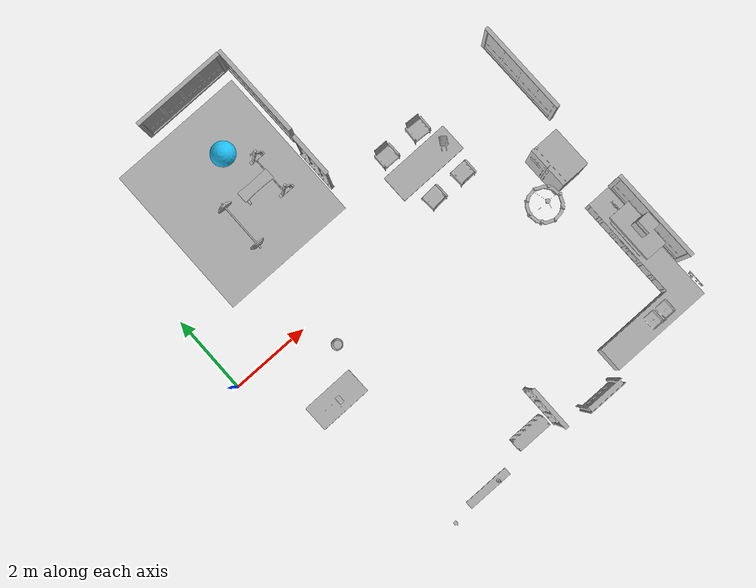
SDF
<sdf version="1.7">
 <world name="default">
  <model name="Ball_01_001">
   <frame name="aws_robomaker_residential_Ball_01::__model__" attached_to="aws_robomaker_residential_Ball_01::link">
    <pose relative_to="__model__">0 0 0 0 -0 0</pose>
   </frame>
   <link name="aws_robomaker_residential_Ball_01::link">
    <inertial>
     <mass>0.12</mass>
     <inertia>
      <ixx>0.030752</ixx>
      <ixy>0</ixy>
      <ixz>0</ixz>
      <iyy>0.030752</iyy>
      <iyz>0</iyz>
      <izz>0.030752</izz>
     </inertia>
    </inertial>
    <collision name="collision">
     <geometry><sphere><radius>0.31</radius></sphere></geometry>
     <surface>
      <friction><ode><mu>0.85</mu><mu2>0.85</mu2></ode></friction>
      <contact><ode><kd>8500</kd><max_vel>5.1</max_vel></ode></contact>
     </surface>
    </collision>
    <visual name="visual">
     <geometry><sphere><radius>0.31</radius></sphere></geometry>
     <material><diffuse>0.12 0.76 0.97 1</diffuse><ambient>0.03 0.21 0.27 1</ambient></material>
     <meta><layer>1</layer></meta>
    </visual>
    <pose relative_to="aws_robomaker_residential_Ball_01::__model__">0 0 0 0 -0 0</pose>
   </link>
   <pose>3.2955 4.22567 0.31 0 -0 0</pose>
  </model>
  <model name="Board_01_001">
   <frame name="aws_robomaker_residential_Board_01::__model__" attached_to="aws_robomaker_residential_Board_01::link">
    <pose relative_to="__model__">0 0 0 0 -0 0</pose>
   </frame>
   <link name="aws_robomaker_residential_Board_01::link">
    <inertial><mass>1</mass></inertial>
    <collision name="collision">
     <geometry>
      <mesh>
       <uri>file://models/aws_robomaker_residential_Board_01/meshes/aws_Board_01_collision.DAE</uri>
       <scale>1 1 1</scale>
      </mesh>
     </geometry>
    </collision>
    <visual name="visual">
     <geometry>
      <mesh><uri>file://models/aws_robomaker_residential_Board_01/meshes/aws_Board_01_visual.DAE</uri></mesh>
     </geometry>
     <meta><layer>2</layer></meta>
    </visual>
    <pose relative_to="aws_robomaker_residential_Board_01::__model__">0 0 0 0 -0 0</pose>
   </link>
   <static>1</static>
   <pose>2.77907 -5.3927 1.53817 0 -0 0</pose>
  </model>
  <model name="ChairA_01_001">
   <frame name="aws_robomaker_residential_ChairA_01::__model__" attached_to="aws_robomaker_residential_ChairA_01::link">
    <pose relative_to="__model__">0 0 0 0 -0 0</pose>
   </frame>
   <link name="aws_robomaker_residential_ChairA_01::link">
    <inertial>
     <mass>7.5</mass>
     <inertia><ixy>0</ixy><ixz>0</ixz><iyz>0</iyz><ixx>0.217</ixx><iyy>0.217</iyy><izz>0.067</izz></inertia>
    </inertial>
    <collision name="collision">
     <geometry>
      <mesh>
       <uri>file://models/aws_robomaker_residential_ChairA_01/meshes/aws_ChairA_01_collision.DAE</uri>
       <scale>1 1 1</scale>
      </mesh>
     </geometry>
    </collision>
    <visual name="visual">
     <geometry>
      <mesh><uri>file://models/aws_robomaker_residential_ChairA_01/meshes/aws_ChairA_01_visual.DAE</uri></mesh>
     </geometry>
     <meta><layer>1</layer></meta>
    </visual>
    <pose relative_to="aws_robomaker_residential_ChairA_01::__model__">0 0 0 0 -0 0</pose>
   </link>
   <pose>7.11516 0.209028 -6e-06 -3.3e-05 0 -1.55607</pose>
  </model>
  <model name="ChairA_01_002">
   <frame name="aws_robomaker_residential_ChairA_01::__model__" attached_to="aws_robomaker_residential_ChairA_01::link">
    <pose relative_to="__model__">0 0 0 0 -0 0</pose>
   </frame>
   <link name="aws_robomaker_residential_ChairA_01::link">
    <inertial>
     <mass>7.5</mass>
     <inertia><ixy>0</ixy><ixz>0</ixz><iyz>0</iyz><ixx>0.217</ixx><iyy>0.217</iyy><izz>0.067</izz></inertia>
    </inertial>
    <collision name="collision">
     <geometry>
      <mesh>
       <uri>file://models/aws_robomaker_residential_ChairA_01/meshes/aws_ChairA_01_collision.DAE</uri>
       <scale>1 1 1</scale>
      </mesh>
     </geometry>
    </collision>
    <visual name="visual">
     <geometry>
      <mesh><uri>file://models/aws_robomaker_residential_ChairA_01/meshes/aws_ChairA_01_visual.DAE</uri></mesh>
     </geometry>
     <meta><layer>1</layer></meta>
    </visual>
    <pose relative_to="aws_robomaker_residential_ChairA_01::__model__">0 0 0 0 -0 0</pose>
   </link>
   <pose>6.25506 0.219468 -0 -0 -0 -1.50414</pose>
  </model>
  <model name="ChairA_01_003">
   <frame name="aws_robomaker_residential_ChairA_01::__model__" attached_to="aws_robomaker_residential_ChairA_01::link">
    <pose relative_to="__model__">0 0 0 0 -0 0</pose>
   </frame>
   <link name="aws_robomaker_residential_ChairA_01::link">
    <inertial>
     <mass>7.5</mass>
     <inertia><ixy>0</ixy><ixz>0</ixz><iyz>0</iyz><ixx>0.217</ixx><iyy>0.217</iyy><izz>0.067</izz></inertia>
    </inertial>
    <collision name="collision">
     <geometry>
      <mesh>
       <uri>file://models/aws_robomaker_residential_ChairA_01/meshes/aws_ChairA_01_collision.DAE</uri>
       <scale>1 1 1</scale>
      </mesh>
     </geometry>
    </collision>
    <visual name="visual">
     <geometry>
      <mesh><uri>file://models/aws_robomaker_residential_ChairA_01/meshes/aws_ChairA_01_visual.DAE</uri></mesh>
     </geometry>
     <meta><layer>1</layer></meta>
    </visual>
    <pose relative_to="aws_robomaker_residential_ChairA_01::__model__">0 0 0 0 -0 0</pose>
   </link>
   <pose>6.06678 1.68075 -0 0 -0 1.56986</pose>
  </model>
  <model name="ChairA_01_004">
   <frame name="aws_robomaker_residential_ChairA_01::__model__" attached_to="aws_robomaker_residential_ChairA_01::link">
    <pose relative_to="__model__">0 0 0 0 -0 0</pose>
   </frame>
   <link name="aws_robomaker_residential_ChairA_01::link">
    <inertial>
     <mass>7.5</mass>
     <inertia><ixy>0</ixy><ixz>0</ixz><iyz>0</iyz><ixx>0.217</ixx><iyy>0.217</iyy><izz>0.067</izz></inertia>
    </inertial>
    <collision name="collision">
     <geometry>
      <mesh>
       <uri>file://models/aws_robomaker_residential_ChairA_01/meshes/aws_ChairA_01_collision.DAE</uri>
       <scale>1 1 1</scale>
      </mesh>
     </geometry>
    </collision>
    <visual name="visual">
     <geometry>
      <mesh><uri>file://models/aws_robomaker_residential_ChairA_01/meshes/aws_ChairA_01_visual.DAE</uri></mesh>
     </geometry>
     <meta><layer>1</layer></meta>
    </visual>
    <pose relative_to="aws_robomaker_residential_ChairA_01::__model__">0 0 0 0 -0 0</pose>
   </link>
   <pose>7.00277 1.67074 -5e-06 -2.7e-05 -0 1.52363</pose>
  </model>
  <model name="Chandelier_01_003">
   <frame name="aws_robomaker_residential_Chandelier_01::__model__" attached_to="aws_robomaker_residential_Chandelier_01::link">
    <pose relative_to="__model__">0 0 0 0 -0 0</pose>
   </frame>
   <link name="aws_robomaker_residential_Chandelier_01::link">
    <inertial><mass>1</mass></inertial>
    <collision name="collision">
     <geometry>
      <mesh>
       <uri>file://models/aws_robomaker_residential_Chandelier_01/meshes/aws_Chandelier_01_collision.DAE</uri>
       <scale>1 1 1</scale>
      </mesh>
     </geometry>
    </collision>
    <visual name="visual">
     <geometry>
      <mesh>
       <uri>file://models/aws_robomaker_residential_Chandelier_01/meshes/aws_Chandelier_01_visual.DAE</uri>
      </mesh>
     </geometry>
     <meta><layer>2</layer></meta>
    </visual>
    <pose relative_to="aws_robomaker_residential_Chandelier_01::__model__">0 0 0 0 -0 0</pose>
   </link>
   <static>1</static>
   <pose>7.82406 -1.59 1.751 0 -0 0</pose>
  </model>
  <model name="Carpet_01_002">
   <frame name="aws_robomaker_residential_Carpet_01::__model__" attached_to="aws_robomaker_residential_Carpet_01::link">
    <pose relative_to="__model__">0 0 0 0 -0 0</pose>
   </frame>
   <link name="aws_robomaker_residential_Carpet_01::link">
    <inertial><mass>8.1</mass></inertial>
    <collision name="collision">
     <geometry>
      <mesh>
       <uri>file://models/aws_robomaker_residential_Carpet_01/meshes/aws_Carpet_01_collision.DAE</uri>
       <scale>1 1 0.95</scale>
      </mesh>
     </geometry>
     <pose>0 0 -0.01 0 -0 0</pose>
    </collision>
    <visual name="visual">
     <geometry>
      <mesh><uri>file://models/aws_robomaker_residential_Carpet_01/meshes/aws_Carpet_01_visual.DAE</uri></mesh>
     </geometry>
     <meta><layer>1</layer></meta>
    </visual>
    <pose relative_to="aws_robomaker_residential_Carpet_01::__model__">0 0 0 0 -0 0</pose>
   </link>
   <static>1</static>
   <pose>2.85405 3.45 0.000585 0 -0 0</pose>
  </model>
  <model name="CoffeeTable_01_001">
   <frame name="aws_robomaker_residential_CoffeeTable_01::__model__" attached_to="aws_robomaker_residential_CoffeeTable_01::link">
    <pose relative_to="__model__">0 0 0 0 -0 0</pose>
   </frame>
   <link name="aws_robomaker_residential_CoffeeTable_01::link">
    <inertial>
     <mass>21.7</mass>
     <inertia><ixx>0.81375</ixx><ixy>0</ixy><ixz>0</ixz><iyy>2.76675</iyy><iyz>0</iyz><izz>3.254</izz></inertia>
    </inertial>
    <collision name="collision">
     <geometry>
      <mesh>
       <uri>file://models/aws_robomaker_residential_CoffeeTable_01/meshes/aws_CoffeeTable_01_collision.DAE</uri>
       <scale>1 1 1</scale>
      </mesh>
     </geometry>
     <surface><contact><ode><max_vel>0.01</max_vel></ode></contact></surface>
    </collision>
    <visual name="visual">
     <geometry>
      <mesh>
       <uri>file://models/aws_robomaker_residential_CoffeeTable_01/meshes/aws_CoffeeTable_01_visual.DAE</uri>
      </mesh>
     </geometry>
     <meta><layer>1</layer></meta>
    </visual>
    <pose relative_to="aws_robomaker_residential_CoffeeTable_01::__model__">0 0 0 0 -0 0</pose>
   </link>
   <static>1</static>
   <pose>1.5123 -1.73344 0.041983 0 -0 0.01</pose>
  </model>
  <model name="CookingBench_01_001">
   <frame name="aws_robomaker_residential_CookingBench_01::__model__" attached_to="aws_robomaker_residential_CookingBench_01::link">
    <pose relative_to="__model__">0 0 0 0 -0 0</pose>
   </frame>
   <link name="aws_robomaker_residential_CookingBench_01::link">
    <inertial><mass>1</mass></inertial>
    <collision name="collision">
     <geometry>
      <mesh>
       <uri>file://models/aws_robomaker_residential_CookingBench_01/meshes/aws_CookingBench_01_collision.DAE</uri>
       <scale>1 1 1</scale>
      </mesh>
     </geometry>
    </collision>
    <visual name="visual">
     <geometry>
      <mesh>
       <uri>file://models/aws_robomaker_residential_CookingBench_01/meshes/aws_CookingBench_01_visual.DAE</uri>
      </mesh>
     </geometry>
     <meta><layer>1</layer></meta>
    </visual>
    <pose relative_to="aws_robomaker_residential_CookingBench_01::__model__">0 0 0 0 -0 0</pose>
   </link>
   <pose>9.03838 -3.35114 0.90361 0 -0 3.13713</pose>
   <static>1</static>
  </model>
  <model name="KitchenTable_01_001">
   <frame name="aws_robomaker_residential_KitchenTable_01::__model__" attached_to="aws_robomaker_residential_KitchenTable_01::link">
    <pose relative_to="__model__">0 0 0 0 -0 0</pose>
   </frame>
   <link name="aws_robomaker_residential_KitchenTable_01::link">
    <inertial>
     <mass>12.3</mass>
     <inertia><ixx>1</ixx><ixy>0</ixy><ixz>0</ixz><iyy>1</iyy><iyz>0</iyz><izz>1</izz></inertia>
    </inertial>
    <collision name="collision">
     <geometry>
      <mesh>
       <uri>file://models/aws_robomaker_residential_KitchenTable_01/meshes/aws_KitchenTable_01_collision.DAE</uri>
       <scale>1 1 1</scale>
      </mesh>
     </geometry>
    </collision>
    <visual name="visual">
     <geometry>
      <mesh>
       <uri>file://models/aws_robomaker_residential_KitchenTable_01/meshes/aws_KitchenTable_01_visual.DAE</uri>
      </mesh>
     </geometry>
     <meta><layer>1</layer></meta>
    </visual>
    <pose relative_to="aws_robomaker_residential_KitchenTable_01::__model__">0 0 0 0 -0 0</pose>
   </link>
   <pose>6.55036 0.95103 0 0 0 -1.56369</pose>
  </model>
  <model name="Door_01_001">
   <frame name="aws_robomaker_residential_Door_01::__model__" attached_to="aws_robomaker_residential_Door_01::link">
    <pose relative_to="__model__">0 0 0 0 -0 0</pose>
   </frame>
   <link name="aws_robomaker_residential_Door_01::link">
    <inertial><mass>1</mass></inertial>
    <collision name="collision">
     <geometry>
      <mesh>
       <uri>file://models/aws_robomaker_residential_Door_01/meshes/aws_Door_01_collision.DAE</uri>
       <scale>1 1 1</scale>
      </mesh>
     </geometry>
    </collision>
    <visual name="visual">
     <geometry>
      <mesh><uri>file://models/aws_robomaker_residential_Door_01/meshes/aws_Door_01_visual.DAE</uri></mesh>
     </geometry>
     <meta><layer>2</layer></meta>
    </visual>
    <pose relative_to="aws_robomaker_residential_Door_01::__model__">0 0 0 0 -0 0</pose>
   </link>
   <static>1</static>
   <pose>6.00145 -5.549 0 0 -0 0</pose>
  </model>
  <model name="Dumbbell_01_001">
   <frame name="aws_robomaker_residential_Dumbbell_01::__model__" attached_to="aws_robomaker_residential_Dumbbell_01::link">
    <pose relative_to="__model__">0 0 0 0 -0 0</pose>
   </frame>
   <link name="aws_robomaker_residential_Dumbbell_01::link">
    <inertial>
     <mass>80</mass>
     <inertia><ixx>14.601</ixx><ixy>0</ixy><ixz>0</ixz><iyy>0</iyy><iyz>0</iyz><izz>14.601</izz></inertia>
    </inertial>
    <collision name="collision">
     <geometry>
      <mesh>
       <uri>file://models/aws_robomaker_residential_Dumbbell_01/meshes/aws_Dumbbell_01_collision.DAE</uri>
       <scale>1 1 1</scale>
      </mesh>
     </geometry>
    </collision>
    <visual name="visual">
     <geometry>
      <mesh><uri>file://models/aws_robomaker_residential_Dumbbell_01/meshes/aws_Dumbbell_01_visual.DAE</uri></mesh>
     </geometry>
     <meta><layer>1</layer></meta>
    </visual>
    <pose relative_to="aws_robomaker_residential_Dumbbell_01::__model__">0 0 0 0 -0 0</pose>
   </link>
   <static>1</static>
   <pose>2.51285 2.71779 0.002183 0 -0 0</pose>
  </model>
  <model name="Tablet_01_001">
   <frame name="aws_robomaker_residential_Tablet_01::__model__" attached_to="aws_robomaker_residential_Tablet_01::link">
    <pose relative_to="__model__">0 0 0 0 -0 0</pose>
   </frame>
   <link name="aws_robomaker_residential_Tablet_01::link">
    <inertial>
     <mass>0.5</mass>
     <inertia><ixx>0.035652</ixx><ixy>0</ixy><ixz>0</ixz><iyy>0.01</iyy><iyz>0</iyz><izz>0.041207</izz></inertia>
    </inertial>
    <collision name="collision">
     <geometry>
      <mesh>
       <uri>file://models/aws_robomaker_residential_Tablet_01/meshes/aws_Tablet_01_collision.DAE</uri>
       <scale>1 1 1</scale>
      </mesh>
     </geometry>
    </collision>
    <visual name="visual">
     <geometry>
      <mesh><uri>file://models/aws_robomaker_residential_Tablet_01/meshes/aws_Tablet_01_visual.DAE</uri></mesh>
     </geometry>
     <meta><layer>2</layer></meta>
    </visual>
    <pose relative_to="aws_robomaker_residential_Tablet_01::__model__">0 0 0 0 -0 0</pose>
   </link>
   <static>1</static>
   <pose>1.57283 -1.77586 0.40179 -0.020625 -8e-05 -0.006317</pose>
  </model>
  <model name="FitnessEquipment_01_001">
   <frame name="aws_robomaker_residential_FitnessEquipment_01::__model__" attached_to="aws_robomaker_residential_FitnessEquipment_01::link">
    <pose relative_to="__model__">0 0 0 0 -0 0</pose>
   </frame>
   <link name="aws_robomaker_residential_FitnessEquipment_01::link">
    <inertial><mass>80</mass></inertial>
    <collision name="collision">
     <geometry>
      <mesh>
       <uri>file://models/aws_robomaker_residential_FitnessEquipment_01/meshes/aws_FitnessEquipment_01_collision.DAE</uri>
       <scale>1 1 1</scale>
      </mesh>
     </geometry>
    </collision>
    <visual name="visual">
     <geometry>
      <mesh>
       <uri>file://models/aws_robomaker_residential_FitnessEquipment_01/meshes/aws_FitnessEquipment_01_visual.DAE</uri>
      </mesh>
     </geometry>
     <meta><layer>1</layer></meta>
    </visual>
    <pose relative_to="aws_robomaker_residential_FitnessEquipment_01::__model__">0 0 0 0 -0 0</pose>
   </link>
   <static>1</static>
   <pose>3.48472 3.1691 0.003168 0 -0 0</pose>
  </model>
  <model name="Handle_01_001">
   <frame name="aws_robomaker_residential_Handle_01::__model__" attached_to="aws_robomaker_residential_Handle_01::link">
    <pose relative_to="__model__">0 0 0 0 -0 0</pose>
   </frame>
   <link name="aws_robomaker_residential_Handle_01::link">
    <inertial><mass>1</mass></inertial>
    <collision name="collision">
     <geometry>
      <mesh>
       <uri>file://models/aws_robomaker_residential_Handle_01/meshes/aws_Handle_01_collision.DAE</uri>
       <scale>1 1 1</scale>
      </mesh>
     </geometry>
    </collision>
    <visual name="visual">
     <geometry>
      <mesh><uri>file://models/aws_robomaker_residential_Handle_01/meshes/aws_Handle_01_visual.DAE</uri></mesh>
     </geometry>
     <meta><layer>2</layer></meta>
    </visual>
    <pose relative_to="aws_robomaker_residential_Handle_01::__model__">0 0 0 0 -0 0</pose>
   </link>
   <static>1</static>
   <pose>5.724 -5.523 0.9938 0 0 -3.1415</pose>
  </model>
  <model name="FoldingDoor_02_001">
   <frame name="aws_robomaker_residential_FoldingDoor_02::__model__" attached_to="aws_robomaker_residential_FoldingDoor_02::link">
    <pose relative_to="__model__">0 0 0 0 -0 0</pose>
   </frame>
   <link name="aws_robomaker_residential_FoldingDoor_02::link">
    <inertial><mass>1</mass></inertial>
    <collision name="collision">
     <geometry>
      <mesh>
       <uri>file://models/aws_robomaker_residential_FoldingDoor_02/meshes/aws_FoldingDoor_02_collision.DAE</uri>
       <scale>1 1 1</scale>
      </mesh>
     </geometry>
    </collision>
    <visual name="visual">
     <geometry>
      <mesh>
       <uri>file://models/aws_robomaker_residential_FoldingDoor_02/meshes/aws_FoldingDoor_02_visual.DAE</uri>
      </mesh>
     </geometry>
     <meta><layer>2</layer></meta>
    </visual>
    <pose relative_to="aws_robomaker_residential_FoldingDoor_02::__model__">0 0 0 0 -0 0</pose>
   </link>
   <static>1</static>
   <pose>4.67423 2.46451 0 0 -0 3.14159</pose>
  </model>
  <model name="FoldingDoor_02_002">
   <frame name="aws_robomaker_residential_FoldingDoor_02::__model__" attached_to="aws_robomaker_residential_FoldingDoor_02::link">
    <pose relative_to="__model__">0 0 0 0 -0 0</pose>
   </frame>
   <link name="aws_robomaker_residential_FoldingDoor_02::link">
    <inertial><mass>1</mass></inertial>
    <collision name="collision">
     <geometry>
      <mesh>
       <uri>file://models/aws_robomaker_residential_FoldingDoor_02/meshes/aws_FoldingDoor_02_collision.DAE</uri>
       <scale>1 1 1</scale>
      </mesh>
     </geometry>
    </collision>
    <visual name="visual">
     <geometry>
      <mesh>
       <uri>file://models/aws_robomaker_residential_FoldingDoor_02/meshes/aws_FoldingDoor_02_visual.DAE</uri>
      </mesh>
     </geometry>
     <meta><layer>2</layer></meta>
    </visual>
    <pose relative_to="aws_robomaker_residential_FoldingDoor_02::__model__">0 0 0 0 -0 0</pose>
   </link>
   <static>1</static>
   <pose>4.8912 -4.84968 0 0 -0 0</pose>
  </model>
  <model name="KitchenCabinet_01_001">
   <frame name="aws_robomaker_residential_KitchenCabinet_01::__model__" attached_to="aws_robomaker_residential_KitchenCabinet_01::link">
    <pose relative_to="__model__">0 0 0 0 -0 0</pose>
   </frame>
   <link name="aws_robomaker_residential_KitchenCabinet_01::link">
    <inertial><mass>1</mass></inertial>
    <collision name="collision">
     <geometry>
      <mesh>
       <uri>file://models/aws_robomaker_residential_KitchenCabinet_01/meshes/aws_KitchenCabinet_01_collision.DAE</uri>
       <scale>1 1 1</scale>
      </mesh>
     </geometry>
    </collision>
    <visual name="visual">
     <geometry>
      <mesh>
       <uri>file://models/aws_robomaker_residential_KitchenCabinet_01/meshes/aws_KitchenCabinet_01_visual.DAE</uri>
      </mesh>
     </geometry>
     <meta><layer>1</layer></meta>
    </visual>
    <pose relative_to="aws_robomaker_residential_KitchenCabinet_01::__model__">0 0 0 0 -0 0</pose>
   </link>
   <static>1</static>
   <pose>8.00201 -3.83651 0.012068 0 0 -3.14</pose>
  </model>
  <model name="KitchenUtensils_01_001">
   <frame name="aws_robomaker_residential_KitchenUtensils_01::__model__" attached_to="aws_robomaker_residential_KitchenUtensils_01::link">
    <pose relative_to="__model__">0 0 0 0 -0 0</pose>
   </frame>
   <link name="aws_robomaker_residential_KitchenUtensils_01::link">
    <inertial><mass>1</mass></inertial>
    <collision name="collision">
     <geometry>
      <mesh>
       <uri>file://models/aws_robomaker_residential_KitchenUtensils_01/meshes/aws_KitchenUtensils_01_collision.DAE</uri>
       <scale>1 1 1</scale>
      </mesh>
     </geometry>
    </collision>
    <visual name="visual">
     <geometry>
      <mesh>
       <uri>file://models/aws_robomaker_residential_KitchenUtensils_01/meshes/aws_KitchenUtensils_01_visual.DAE</uri>
      </mesh>
     </geometry>
     <meta><layer>1</layer></meta>
    </visual>
    <pose relative_to="aws_robomaker_residential_KitchenUtensils_01::__model__">0 0 0 0 -0 0</pose>
   </link>
   <static>1</static>
   <pose>9.28548 -5.02126 1.1418 0 -0 0</pose>
  </model>
  <model name="LightC_01_001">
   <frame name="aws_robomaker_residential_LightC_01::__model__" attached_to="aws_robomaker_residential_LightC_01::link">
    <pose relative_to="__model__">0 0 0 0 -0 0</pose>
   </frame>
   <link name="aws_robomaker_residential_LightC_01::link">
    <inertial><mass>1</mass></inertial>
    <collision name="collision">
     <geometry>
      <mesh>
       <uri>file://models/aws_robomaker_residential_LightC_01/meshes/aws_LightC_01_collision.DAE</uri>
       <scale>1 1 1</scale>
      </mesh>
     </geometry>
    </collision>
    <visual name="visual">
     <geometry>
      <mesh><uri>file://models/aws_robomaker_residential_LightC_01/meshes/aws_LightC_01_visual.DAE</uri></mesh>
     </geometry>
     <meta><layer>2</layer></meta>
    </visual>
    <pose relative_to="aws_robomaker_residential_LightC_01::__model__">0 0 0 0 -0 0</pose>
   </link>
   <static>1</static>
   <pose>1.76957 -5.44437 2 0 -0 0</pose>
  </model>
  <model name="Rangehood_01_001">
   <frame name="aws_robomaker_residential_Rangehood_01::__model__" attached_to="aws_robomaker_residential_Rangehood_01::link">
    <pose relative_to="__model__">0 0 0 0 -0 0</pose>
   </frame>
   <link name="aws_robomaker_residential_Rangehood_01::link">
    <inertial><mass>1</mass></inertial>
    <collision name="collision">
     <geometry>
      <mesh>
       <uri>file://models/aws_robomaker_residential_Rangehood_01/meshes/aws_Rangehood_01_collision.DAE</uri>
       <scale>1 1 1</scale>
      </mesh>
     </geometry>
    </collision>
    <visual name="visual">
     <geometry>
      <mesh>
       <uri>file://models/aws_robomaker_residential_Rangehood_01/meshes/aws_Rangehood_01_visual.DAE</uri>
      </mesh>
     </geometry>
     <meta><layer>2</layer></meta>
    </visual>
    <pose relative_to="aws_robomaker_residential_Rangehood_01::__model__">0 0 0 0 -0 0</pose>
   </link>
   <static>1</static>
   <pose>9.01979 -3.36994 1.50761 0 -0 0</pose>
  </model>
  <model name="Refrigerator_01_001">
   <frame name="aws_robomaker_residential_Refrigerator_01::__model__" attached_to="aws_robomaker_residential_Refrigerator_01::link">
    <pose relative_to="__model__">0 0 0 0 -0 0</pose>
   </frame>
   <link name="aws_robomaker_residential_Refrigerator_01::link">
    <inertial><mass>1</mass></inertial>
    <collision name="collision">
     <geometry>
      <mesh>
       <uri>file://models/aws_robomaker_residential_Refrigerator_01/meshes/aws_Refrigerator_01_collision.DAE</uri>
       <scale>1 1 1</scale>
      </mesh>
     </geometry>
    </collision>
    <visual name="visual">
     <geometry>
      <mesh>
       <uri>file://models/aws_robomaker_residential_Refrigerator_01/meshes/aws_Refrigerator_01_visual.DAE</uri>
      </mesh>
     </geometry>
     <meta><layer>1</layer></meta>
    </visual>
    <pose relative_to="aws_robomaker_residential_Refrigerator_01::__model__">0 0 0 0 -0 0</pose>
   </link>
   <static>1</static>
   <pose>8.70273 -1.03203 0 0 0 -1.5635</pose>
  </model>
  <model name="SeasoningBox_01_001">
   <frame name="aws_robomaker_residential_SeasoningBox_01::__model__" attached_to="aws_robomaker_residential_SeasoningBox_01::link">
    <pose relative_to="__model__">0 0 0 0 -0 0</pose>
   </frame>
   <link name="aws_robomaker_residential_SeasoningBox_01::link">
    <inertial>
     <mass>1</mass>
     <inertia><ixx>1</ixx><ixy>0</ixy><ixz>0</ixz><iyy>1</iyy><iyz>0</iyz><izz>1</izz></inertia>
    </inertial>
    <collision name="collision">
     <geometry>
      <mesh>
       <uri>file://models/aws_robomaker_residential_SeasoningBox_01/meshes/aws_SeasoningBox_01_collision.DAE</uri>
       <scale>1 1 1</scale>
      </mesh>
     </geometry>
    </collision>
    <visual name="visual">
     <geometry>
      <mesh>
       <uri>file://models/aws_robomaker_residential_SeasoningBox_01/meshes/aws_SeasoningBox_01_visual.DAE</uri>
      </mesh>
     </geometry>
     <meta><layer>1</layer></meta>
    </visual>
    <pose relative_to="aws_robomaker_residential_SeasoningBox_01::__model__">0 0 0 0 -0 0</pose>
   </link>
   <pose>9.10797 -2.65173 0.909757 -1e-06 -1e-06 0.00129</pose>
  </model>
  <model name="ShoeRack_01_001">
   <frame name="aws_robomaker_residential_ShoeRack_01::__model__" attached_to="aws_robomaker_residential_ShoeRack_01::link">
    <pose relative_to="__model__">0 0 0 0 -0 0</pose>
   </frame>
   <link name="aws_robomaker_residential_ShoeRack_01::link">
    <inertial>
     <mass>6</mass>
     <inertia>
      <ixx>0.02</ixx>
      <ixy>0</ixy>
      <ixz>0</ixz>
      <iyy>0.04</iyy>
      <iyz>0</iyz>
      <ixx>0.02</ixx>
      <izz>1</izz>
     </inertia>
    </inertial>
    <collision name="collision">
     <geometry>
      <mesh>
       <uri>file://models/aws_robomaker_residential_ShoeRack_01/meshes/aws_ShoeRack_01_collision.DAE</uri>
       <scale>1 1 1</scale>
      </mesh>
     </geometry>
     <surface>
      <friction><ode><mu>0.2</mu><mu2>0.2</mu2></ode></friction>
      <contact><ode><kd>2500</kd></ode></contact>
     </surface>
    </collision>
    <visual name="visual">
     <geometry>
      <mesh><uri>file://models/aws_robomaker_residential_ShoeRack_01/meshes/aws_ShoeRack_01_visual.DAE</uri></mesh>
     </geometry>
     <meta><layer>1</layer></meta>
    </visual>
    <pose relative_to="aws_robomaker_residential_ShoeRack_01::__model__">0 0 0 0 -0 0</pose>
   </link>
   <pose>4.29796 -5.17357 0.004464 0 -0 1.5e-05</pose>
  </model>
  <model name="Tableware_01_001">
   <frame name="aws_robomaker_residential_Tableware_01::__model__" attached_to="aws_robomaker_residential_Tableware_01::link">
    <pose relative_to="__model__">0 0 0 0 -0 0</pose>
   </frame>
   <link name="aws_robomaker_residential_Tableware_01::link">
    <inertial>
     <mass>1</mass>
     <inertia><ixx>1</ixx><ixy>0</ixy><ixz>0</ixz><iyy>1</iyy><iyz>0</iyz><izz>1</izz></inertia>
    </inertial>
    <collision name="collision">
     <geometry>
      <mesh>
       <uri>file://models/aws_robomaker_residential_Tableware_01/meshes/aws_Tableware_01_collision.DAE</uri>
       <scale>1 1 1</scale>
      </mesh>
     </geometry>
    </collision>
    <visual name="visual">
     <geometry>
      <mesh>
       <uri>file://models/aws_robomaker_residential_Tableware_01/meshes/aws_Tableware_01_visual.DAE</uri>
      </mesh>
     </geometry>
     <meta><layer>1</layer></meta>
    </visual>
    <pose relative_to="aws_robomaker_residential_Tableware_01::__model__">0 0 0 0 -0 0</pose>
   </link>
   <pose>7.18728 0.98591 0.819021 0.000147 -2e-06 1.06354</pose>
  </model>
  <model name="Trash_01_001">
   <frame name="aws_robomaker_residential_Trash_01::__model__" attached_to="aws_robomaker_residential_Trash_01::link">
    <pose relative_to="__model__">0 0 0 0 -0 0</pose>
   </frame>
   <link name="aws_robomaker_residential_Trash_01::link">
    <inertial>
     <mass>0.1</mass>
     <inertia><ixy>0</ixy><ixz>0</ixz><iyz>0</iyz><ixx>0.05288</ixx><iyy>0.05288</iyy><izz>0.09132</izz></inertia>
    </inertial>
    <collision name="collision">
     <geometry>
      <mesh>
       <uri>file://models/aws_robomaker_residential_Trash_01/meshes/aws_Trash_01_collision.DAE</uri>
       <scale>1 1 1</scale>
      </mesh>
     </geometry>
    </collision>
    <visual name="visual">
     <geometry>
      <mesh><uri>file://models/aws_robomaker_residential_Trash_01/meshes/aws_Trash_01_visual.DAE</uri></mesh>
     </geometry>
     <meta><layer>1</layer></meta>
    </visual>
    <pose relative_to="aws_robomaker_residential_Trash_01::__model__">0 0 0 0 -0 0</pose>
   </link>
   <pose>2.36015 -0.796238 0.000904 -1e-06 -2e-06 0</pose>
  </model>
  <model name="Vase_01_001">
   <frame name="aws_robomaker_residential_Vase_01::__model__" attached_to="aws_robomaker_residential_Vase_01::link">
    <pose relative_to="__model__">0 0 0 0 -0 0</pose>
   </frame>
   <link name="aws_robomaker_residential_Vase_01::link">
    <inertial>
     <mass>1</mass>
     <inertia><ixx>1</ixx><ixy>0</ixy><ixz>0</ixz><iyy>1</iyy><iyz>0</iyz><izz>1</izz></inertia>
    </inertial>
    <collision name="collision">
     <geometry>
      <mesh>
       <uri>file://models/aws_robomaker_residential_Vase_01/meshes/aws_Vase_01_collision.DAE</uri>
       <scale>1 1 1</scale>
      </mesh>
     </geometry>
    </collision>
    <visual name="visual">
     <geometry>
      <mesh><uri>file://models/aws_robomaker_residential_Vase_01/meshes/aws_Vase_01_visual.DAE</uri></mesh>
     </geometry>
     <meta><layer>1</layer></meta>
    </visual>
    <pose relative_to="aws_robomaker_residential_Vase_01::__model__">0 0 0 0 -0 0</pose>
   </link>
   <pose>3.05566 -5.41308 1.57491 9e-06 -2e-06 0.00084</pose>
  </model>
  <model name="RoomWindow_01_003">
   <frame name="aws_robomaker_residential_RoomWindow_01::__model__" attached_to="aws_robomaker_residential_RoomWindow_01::link">
    <pose relative_to="__model__">0 0 0 0 -0 0</pose>
   </frame>
   <link name="aws_robomaker_residential_RoomWindow_01::link">
    <inertial><mass>1</mass></inertial>
    <collision name="collision">
     <geometry>
      <mesh>
       <uri>file://models/aws_robomaker_residential_RoomWindow_01/meshes/aws_RoomWindow_01_collision.DAE</uri>
       <scale>1 1 1</scale>
      </mesh>
     </geometry>
    </collision>
    <visual name="visual">
     <geometry>
      <mesh>
       <uri>file://models/aws_robomaker_residential_RoomWindow_01/meshes/aws_RoomWindow_01_visual.DAE</uri>
      </mesh>
     </geometry>
     <meta><layer>2</layer></meta>
    </visual>
    <pose relative_to="aws_robomaker_residential_RoomWindow_01::__model__">0 0 0 0 -0 0</pose>
   </link>
   <static>1</static>
   <pose>9.42262 -3.37398 0.502739 0 0 -3.1361</pose>
  </model>
  <model name="RoomWindow_01_004">
   <frame name="aws_robomaker_residential_RoomWindow_01::__model__" attached_to="aws_robomaker_residential_RoomWindow_01::link">
    <pose relative_to="__model__">0 0 0 0 -0 0</pose>
   </frame>
   <link name="aws_robomaker_residential_RoomWindow_01::link">
    <inertial><mass>1</mass></inertial>
    <collision name="collision">
     <geometry>
      <mesh>
       <uri>file://models/aws_robomaker_residential_RoomWindow_01/meshes/aws_RoomWindow_01_collision.DAE</uri>
       <scale>1 1 1</scale>
      </mesh>
     </geometry>
    </collision>
    <visual name="visual">
     <geometry>
      <mesh>
       <uri>file://models/aws_robomaker_residential_RoomWindow_01/meshes/aws_RoomWindow_01_visual.DAE</uri>
      </mesh>
     </geometry>
     <meta><layer>2</layer></meta>
    </visual>
    <pose relative_to="aws_robomaker_residential_RoomWindow_01::__model__">0 0 0 0 -0 0</pose>
   </link>
   <static>1</static>
   <pose>9.42256 0.96852 0.496581 0 0 -3.1361</pose>
  </model>
  <model name="RoomWindow_01_005">
   <frame name="aws_robomaker_residential_RoomWindow_01::__model__" attached_to="aws_robomaker_residential_RoomWindow_01::link">
    <pose relative_to="__model__">0 0 0 0 -0 0</pose>
   </frame>
   <link name="aws_robomaker_residential_RoomWindow_01::link">
    <inertial><mass>1</mass></inertial>
    <collision name="collision">
     <geometry>
      <mesh>
       <uri>file://models/aws_robomaker_residential_RoomWindow_01/meshes/aws_RoomWindow_01_collision.DAE</uri>
       <scale>1 1 1</scale>
      </mesh>
     </geometry>
    </collision>
    <visual name="visual">
     <geometry>
      <mesh>
       <uri>file://models/aws_robomaker_residential_RoomWindow_01/meshes/aws_RoomWindow_01_visual.DAE</uri>
      </mesh>
     </geometry>
     <meta><layer>2</layer></meta>
    </visual>
    <pose relative_to="aws_robomaker_residential_RoomWindow_01::__model__">0 0 0 0 -0 0</pose>
   </link>
   <static>1</static>
   <pose>4.72232 4.47028 0.502739 0 0 -3.1361</pose>
  </model>
  <model name="RoomWindow_01_006">
   <frame name="aws_robomaker_residential_RoomWindow_01::__model__" attached_to="aws_robomaker_residential_RoomWindow_01::link">
    <pose relative_to="__model__">0 0 0 0 -0 0</pose>
   </frame>
   <link name="aws_robomaker_residential_RoomWindow_01::link">
    <inertial><mass>1</mass></inertial>
    <collision name="collision">
     <geometry>
      <mesh>
       <uri>file://models/aws_robomaker_residential_RoomWindow_01/meshes/aws_RoomWindow_01_collision.DAE</uri>
       <scale>1 1 1</scale>
      </mesh>
     </geometry>
    </collision>
    <visual name="visual">
     <geometry>
      <mesh>
       <uri>file://models/aws_robomaker_residential_RoomWindow_01/meshes/aws_RoomWindow_01_visual.DAE</uri>
      </mesh>
     </geometry>
     <meta><layer>2</layer></meta>
    </visual>
    <pose relative_to="aws_robomaker_residential_RoomWindow_01::__model__">0 0 0 0 -0 0</pose>
   </link>
   <static>1</static>
   <pose>3.48852 5.60069 0.502739 0 0 -1.56627</pose>
  </model>
 </world>
</sdf>
